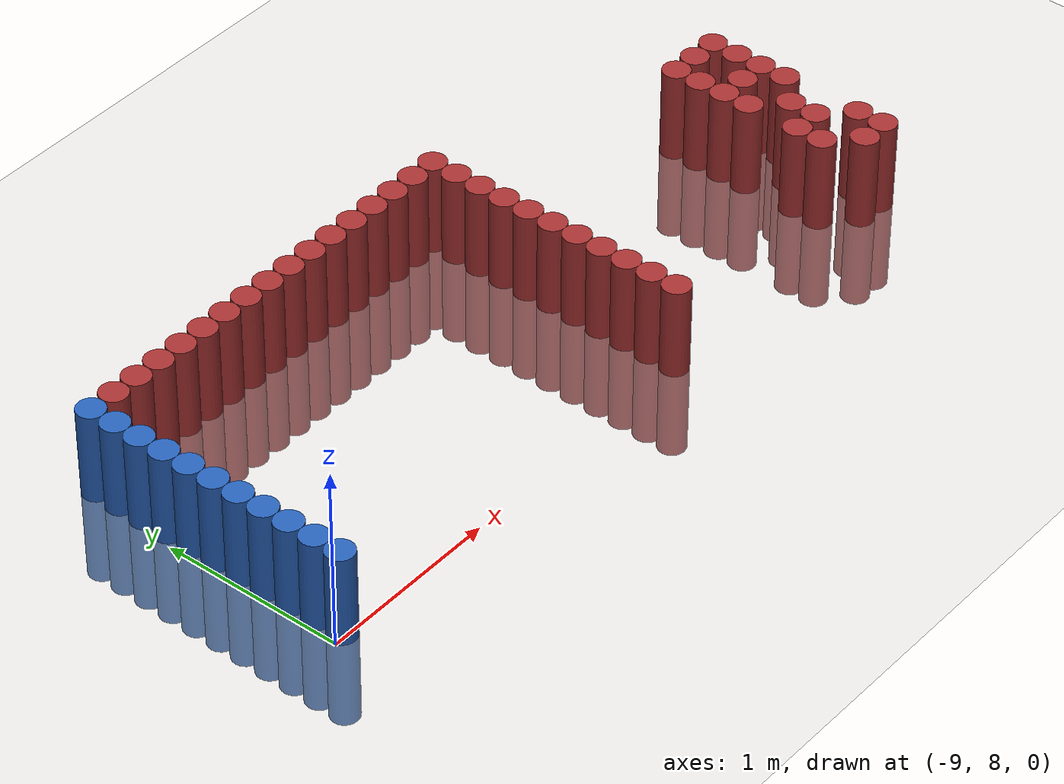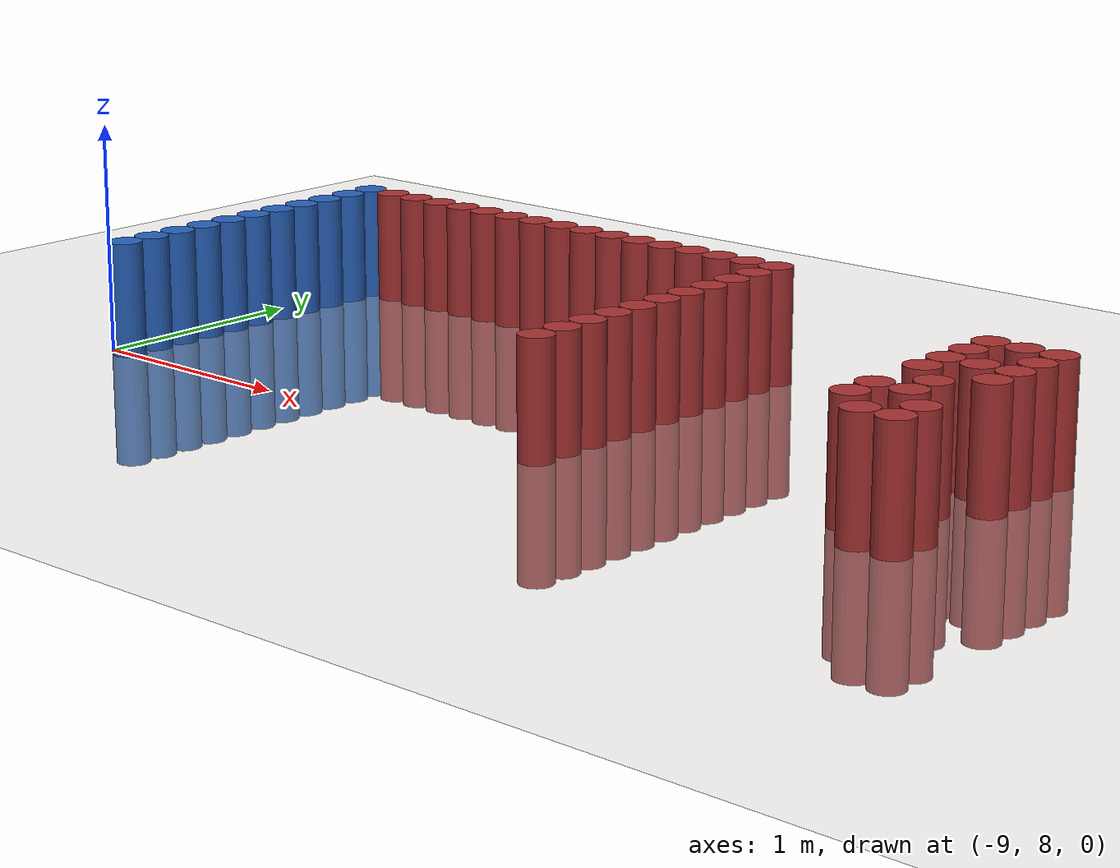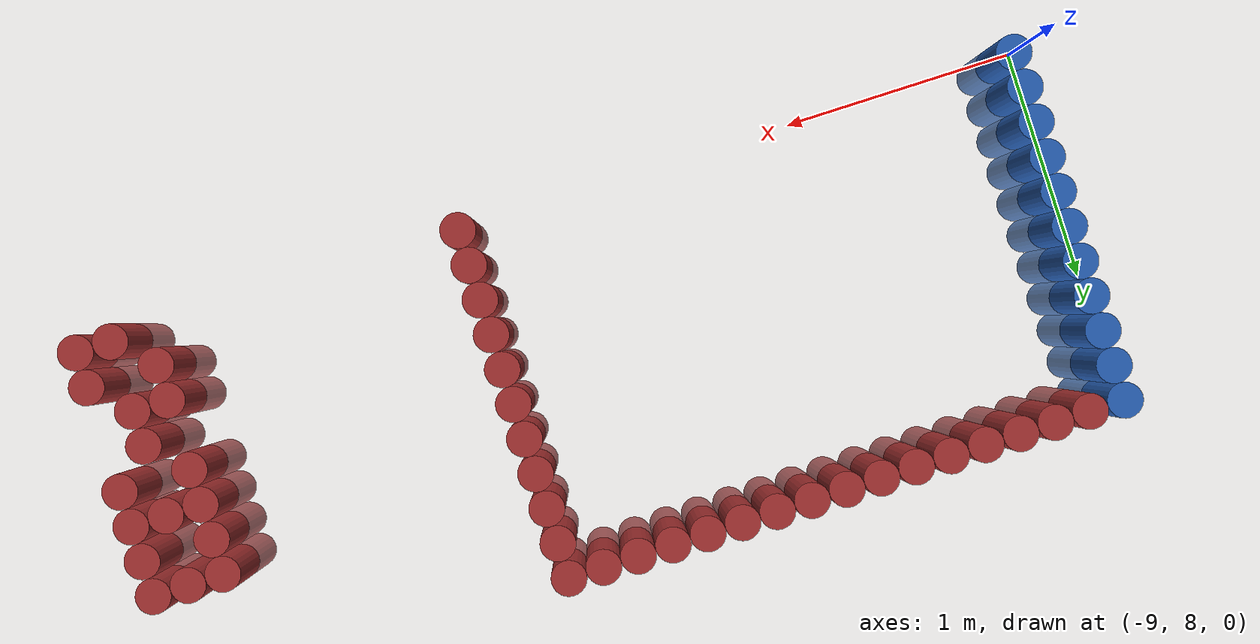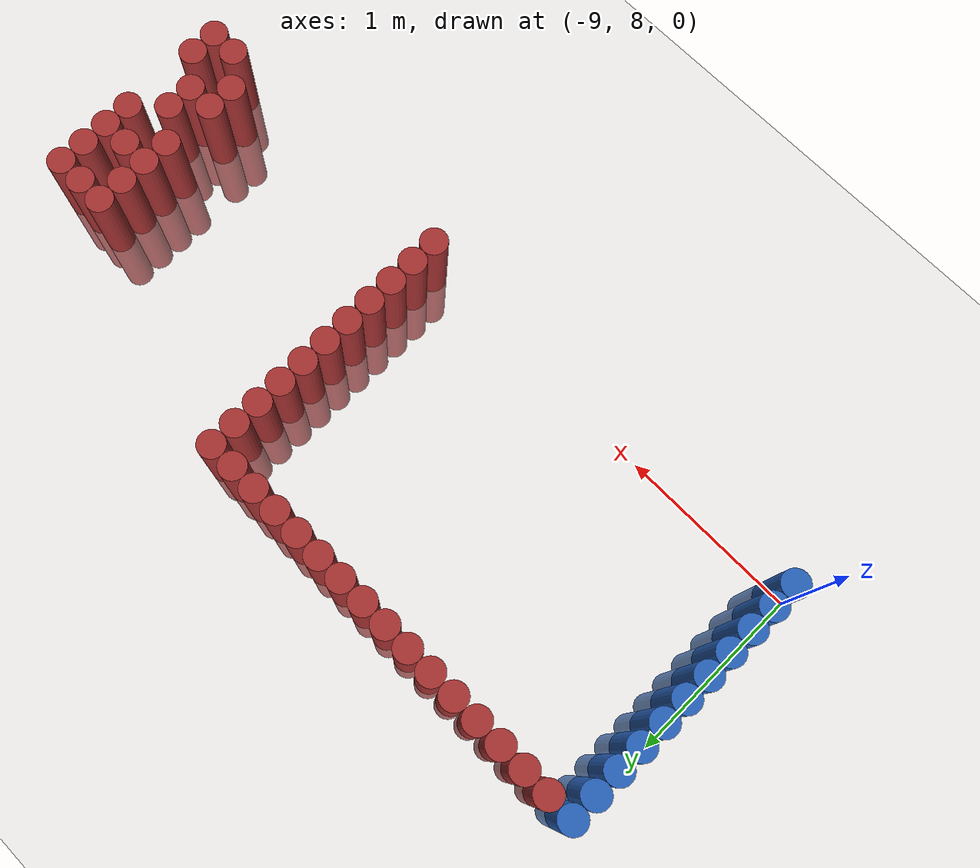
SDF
<sdf version="1.6">
 <world name="default">
  <model name="ground_plane">
   <static>1</static>
   <link name="link">
    <collision name="collision">
     <geometry><plane><normal>0 0 1</normal><size>100 100</size></plane></geometry>
     <surface><friction><ode><mu>100</mu><mu2>50</mu2></ode></friction></surface>
    </collision>
    <visual name="visual">
     <cast_shadows>0</cast_shadows>
     <geometry><plane><normal>0 0 1</normal><size>100 100</size></plane></geometry>
     <material>
      <script><uri>file://media/materials/scripts/gazebo.material</uri><name>Gazebo/Grey</name></script>
     </material>
    </visual>
   </link>
  </model>
  <model name="unit_cylinder_144">
   <static>1</static>
   <pose>-8.925000 8.025000 0.000000 0.000000 0.000000 0.000000</pose>
   <link name="link">
    <inertial>
     <mass>1</mass>
     <inertia><ixx>0.145833</ixx><ixy>0</ixy><ixz>0</ixz><iyy>0.145833</iyy><iyz>0</iyz><izz>0.125</izz></inertia>
    </inertial>
    <collision name="collision">
     <geometry><cylinder><radius>0.075000</radius><length>1</length></cylinder></geometry>
    </collision>
    <visual name="visual">
     <geometry><cylinder><radius>0.075000</radius><length>1</length></cylinder></geometry>
     <material>
      <ambient>0.152000 0.379000 0.720000 1</ambient>
      <diffuse>0.152000 0.379000 0.720000 1</diffuse>
     </material>
     <material>
      <script><name>Gazebo/Grey</name><uri>file://media/materials/scripts/gazebo.material</uri></script>
     </material>
    </visual>
   </link>
  </model>
  <model name="unit_cylinder_145">
   <static>1</static>
   <pose>-8.925000 8.175000 0.000000 0.000000 0.000000 0.000000</pose>
   <link name="link">
    <inertial>
     <mass>1</mass>
     <inertia><ixx>0.145833</ixx><ixy>0</ixy><ixz>0</ixz><iyy>0.145833</iyy><iyz>0</iyz><izz>0.125</izz></inertia>
    </inertial>
    <collision name="collision">
     <geometry><cylinder><radius>0.075000</radius><length>1</length></cylinder></geometry>
    </collision>
    <visual name="visual">
     <geometry><cylinder><radius>0.075000</radius><length>1</length></cylinder></geometry>
     <material>
      <ambient>0.152000 0.379000 0.720000 1</ambient>
      <diffuse>0.152000 0.379000 0.720000 1</diffuse>
     </material>
     <material>
      <script><name>Gazebo/Grey</name><uri>file://media/materials/scripts/gazebo.material</uri></script>
     </material>
    </visual>
   </link>
  </model>
  <model name="unit_cylinder_146">
   <static>1</static>
   <pose>-8.925000 8.325000 0.000000 0.000000 0.000000 0.000000</pose>
   <link name="link">
    <inertial>
     <mass>1</mass>
     <inertia><ixx>0.145833</ixx><ixy>0</ixy><ixz>0</ixz><iyy>0.145833</iyy><iyz>0</iyz><izz>0.125</izz></inertia>
    </inertial>
    <collision name="collision">
     <geometry><cylinder><radius>0.075000</radius><length>1</length></cylinder></geometry>
    </collision>
    <visual name="visual">
     <geometry><cylinder><radius>0.075000</radius><length>1</length></cylinder></geometry>
     <material>
      <ambient>0.152000 0.379000 0.720000 1</ambient>
      <diffuse>0.152000 0.379000 0.720000 1</diffuse>
     </material>
     <material>
      <script><name>Gazebo/Grey</name><uri>file://media/materials/scripts/gazebo.material</uri></script>
     </material>
    </visual>
   </link>
  </model>
  <model name="unit_cylinder_147">
   <static>1</static>
   <pose>-8.925000 8.475000 0.000000 0.000000 0.000000 0.000000</pose>
   <link name="link">
    <inertial>
     <mass>1</mass>
     <inertia><ixx>0.145833</ixx><ixy>0</ixy><ixz>0</ixz><iyy>0.145833</iyy><iyz>0</iyz><izz>0.125</izz></inertia>
    </inertial>
    <collision name="collision">
     <geometry><cylinder><radius>0.075000</radius><length>1</length></cylinder></geometry>
    </collision>
    <visual name="visual">
     <geometry><cylinder><radius>0.075000</radius><length>1</length></cylinder></geometry>
     <material>
      <ambient>0.152000 0.379000 0.720000 1</ambient>
      <diffuse>0.152000 0.379000 0.720000 1</diffuse>
     </material>
     <material>
      <script><name>Gazebo/Grey</name><uri>file://media/materials/scripts/gazebo.material</uri></script>
     </material>
    </visual>
   </link>
  </model>
  <model name="unit_cylinder_148">
   <static>1</static>
   <pose>-8.925000 8.625000 0.000000 0.000000 0.000000 0.000000</pose>
   <link name="link">
    <inertial>
     <mass>1</mass>
     <inertia><ixx>0.145833</ixx><ixy>0</ixy><ixz>0</ixz><iyy>0.145833</iyy><iyz>0</iyz><izz>0.125</izz></inertia>
    </inertial>
    <collision name="collision">
     <geometry><cylinder><radius>0.075000</radius><length>1</length></cylinder></geometry>
    </collision>
    <visual name="visual">
     <geometry><cylinder><radius>0.075000</radius><length>1</length></cylinder></geometry>
     <material>
      <ambient>0.152000 0.379000 0.720000 1</ambient>
      <diffuse>0.152000 0.379000 0.720000 1</diffuse>
     </material>
     <material>
      <script><name>Gazebo/Grey</name><uri>file://media/materials/scripts/gazebo.material</uri></script>
     </material>
    </visual>
   </link>
  </model>
  <model name="unit_cylinder_149">
   <static>1</static>
   <pose>-8.925000 8.775000 0.000000 0.000000 0.000000 0.000000</pose>
   <link name="link">
    <inertial>
     <mass>1</mass>
     <inertia><ixx>0.145833</ixx><ixy>0</ixy><ixz>0</ixz><iyy>0.145833</iyy><iyz>0</iyz><izz>0.125</izz></inertia>
    </inertial>
    <collision name="collision">
     <geometry><cylinder><radius>0.075000</radius><length>1</length></cylinder></geometry>
    </collision>
    <visual name="visual">
     <geometry><cylinder><radius>0.075000</radius><length>1</length></cylinder></geometry>
     <material>
      <ambient>0.152000 0.379000 0.720000 1</ambient>
      <diffuse>0.152000 0.379000 0.720000 1</diffuse>
     </material>
     <material>
      <script><name>Gazebo/Grey</name><uri>file://media/materials/scripts/gazebo.material</uri></script>
     </material>
    </visual>
   </link>
  </model>
  <model name="unit_cylinder_150">
   <static>1</static>
   <pose>-8.925000 8.925000 0.000000 0.000000 0.000000 0.000000</pose>
   <link name="link">
    <inertial>
     <mass>1</mass>
     <inertia><ixx>0.145833</ixx><ixy>0</ixy><ixz>0</ixz><iyy>0.145833</iyy><iyz>0</iyz><izz>0.125</izz></inertia>
    </inertial>
    <collision name="collision">
     <geometry><cylinder><radius>0.075000</radius><length>1</length></cylinder></geometry>
    </collision>
    <visual name="visual">
     <geometry><cylinder><radius>0.075000</radius><length>1</length></cylinder></geometry>
     <material>
      <ambient>0.152000 0.379000 0.720000 1</ambient>
      <diffuse>0.152000 0.379000 0.720000 1</diffuse>
     </material>
     <material>
      <script><name>Gazebo/Grey</name><uri>file://media/materials/scripts/gazebo.material</uri></script>
     </material>
    </visual>
   </link>
  </model>
  <model name="unit_cylinder_151">
   <static>1</static>
   <pose>-8.925000 9.075000 0.000000 0.000000 0.000000 0.000000</pose>
   <link name="link">
    <inertial>
     <mass>1</mass>
     <inertia><ixx>0.145833</ixx><ixy>0</ixy><ixz>0</ixz><iyy>0.145833</iyy><iyz>0</iyz><izz>0.125</izz></inertia>
    </inertial>
    <collision name="collision">
     <geometry><cylinder><radius>0.075000</radius><length>1</length></cylinder></geometry>
    </collision>
    <visual name="visual">
     <geometry><cylinder><radius>0.075000</radius><length>1</length></cylinder></geometry>
     <material>
      <ambient>0.152000 0.379000 0.720000 1</ambient>
      <diffuse>0.152000 0.379000 0.720000 1</diffuse>
     </material>
     <material>
      <script><name>Gazebo/Grey</name><uri>file://media/materials/scripts/gazebo.material</uri></script>
     </material>
    </visual>
   </link>
  </model>
  <model name="unit_cylinder_152">
   <static>1</static>
   <pose>-8.925000 9.225000 0.000000 0.000000 0.000000 0.000000</pose>
   <link name="link">
    <inertial>
     <mass>1</mass>
     <inertia><ixx>0.145833</ixx><ixy>0</ixy><ixz>0</ixz><iyy>0.145833</iyy><iyz>0</iyz><izz>0.125</izz></inertia>
    </inertial>
    <collision name="collision">
     <geometry><cylinder><radius>0.075000</radius><length>1</length></cylinder></geometry>
    </collision>
    <visual name="visual">
     <geometry><cylinder><radius>0.075000</radius><length>1</length></cylinder></geometry>
     <material>
      <ambient>0.152000 0.379000 0.720000 1</ambient>
      <diffuse>0.152000 0.379000 0.720000 1</diffuse>
     </material>
     <material>
      <script><name>Gazebo/Grey</name><uri>file://media/materials/scripts/gazebo.material</uri></script>
     </material>
    </visual>
   </link>
  </model>
  <model name="unit_cylinder_153">
   <static>1</static>
   <pose>-8.925000 9.375000 0.000000 0.000000 0.000000 0.000000</pose>
   <link name="link">
    <inertial>
     <mass>1</mass>
     <inertia><ixx>0.145833</ixx><ixy>0</ixy><ixz>0</ixz><iyy>0.145833</iyy><iyz>0</iyz><izz>0.125</izz></inertia>
    </inertial>
    <collision name="collision">
     <geometry><cylinder><radius>0.075000</radius><length>1</length></cylinder></geometry>
    </collision>
    <visual name="visual">
     <geometry><cylinder><radius>0.075000</radius><length>1</length></cylinder></geometry>
     <material>
      <ambient>0.152000 0.379000 0.720000 1</ambient>
      <diffuse>0.152000 0.379000 0.720000 1</diffuse>
     </material>
     <material>
      <script><name>Gazebo/Grey</name><uri>file://media/materials/scripts/gazebo.material</uri></script>
     </material>
    </visual>
   </link>
  </model>
  <model name="unit_cylinder_154">
   <static>1</static>
   <pose>-8.925000 9.525000 0.000000 0.000000 0.000000 0.000000</pose>
   <link name="link">
    <inertial>
     <mass>1</mass>
     <inertia><ixx>0.145833</ixx><ixy>0</ixy><ixz>0</ixz><iyy>0.145833</iyy><iyz>0</iyz><izz>0.125</izz></inertia>
    </inertial>
    <collision name="collision">
     <geometry><cylinder><radius>0.075000</radius><length>1</length></cylinder></geometry>
    </collision>
    <visual name="visual">
     <geometry><cylinder><radius>0.075000</radius><length>1</length></cylinder></geometry>
     <material>
      <ambient>0.152000 0.379000 0.720000 1</ambient>
      <diffuse>0.152000 0.379000 0.720000 1</diffuse>
     </material>
     <material>
      <script><name>Gazebo/Grey</name><uri>file://media/materials/scripts/gazebo.material</uri></script>
     </material>
    </visual>
   </link>
  </model>
  <model name="unit_cylinder_156">
   <static>1</static>
   <pose>-8.775000 9.525000 0.000000 0.000000 0.000000 0.000000</pose>
   <link name="link">
    <inertial>
     <mass>1</mass>
     <inertia><ixx>0.145833</ixx><ixy>0</ixy><ixz>0</ixz><iyy>0.145833</iyy><iyz>0</iyz><izz>0.125</izz></inertia>
    </inertial>
    <collision name="collision">
     <geometry><cylinder><radius>0.075000</radius><length>1</length></cylinder></geometry>
    </collision>
    <visual name="visual">
     <geometry><cylinder><radius>0.075000</radius><length>1</length></cylinder></geometry>
     <material>
      <ambient>0.648000 0.192000 0.192000 1</ambient>
      <diffuse>0.648000 0.192000 0.192000 1</diffuse>
     </material>
     <material>
      <script><name>Gazebo/Grey</name><uri>file://media/materials/scripts/gazebo.material</uri></script>
     </material>
    </visual>
   </link>
  </model>
  <model name="unit_cylinder_158">
   <static>1</static>
   <pose>-8.625000 9.525000 0.000000 0.000000 0.000000 0.000000</pose>
   <link name="link">
    <inertial>
     <mass>1</mass>
     <inertia><ixx>0.145833</ixx><ixy>0</ixy><ixz>0</ixz><iyy>0.145833</iyy><iyz>0</iyz><izz>0.125</izz></inertia>
    </inertial>
    <collision name="collision">
     <geometry><cylinder><radius>0.075000</radius><length>1</length></cylinder></geometry>
    </collision>
    <visual name="visual">
     <geometry><cylinder><radius>0.075000</radius><length>1</length></cylinder></geometry>
     <material>
      <ambient>0.648000 0.192000 0.192000 1</ambient>
      <diffuse>0.648000 0.192000 0.192000 1</diffuse>
     </material>
     <material>
      <script><name>Gazebo/Grey</name><uri>file://media/materials/scripts/gazebo.material</uri></script>
     </material>
    </visual>
   </link>
  </model>
  <model name="unit_cylinder_160">
   <static>1</static>
   <pose>-8.475000 9.525000 0.000000 0.000000 0.000000 0.000000</pose>
   <link name="link">
    <inertial>
     <mass>1</mass>
     <inertia><ixx>0.145833</ixx><ixy>0</ixy><ixz>0</ixz><iyy>0.145833</iyy><iyz>0</iyz><izz>0.125</izz></inertia>
    </inertial>
    <collision name="collision">
     <geometry><cylinder><radius>0.075000</radius><length>1</length></cylinder></geometry>
    </collision>
    <visual name="visual">
     <geometry><cylinder><radius>0.075000</radius><length>1</length></cylinder></geometry>
     <material>
      <ambient>0.648000 0.192000 0.192000 1</ambient>
      <diffuse>0.648000 0.192000 0.192000 1</diffuse>
     </material>
     <material>
      <script><name>Gazebo/Grey</name><uri>file://media/materials/scripts/gazebo.material</uri></script>
     </material>
    </visual>
   </link>
  </model>
  <model name="unit_cylinder_162">
   <static>1</static>
   <pose>-8.325000 9.525000 0.000000 0.000000 0.000000 0.000000</pose>
   <link name="link">
    <inertial>
     <mass>1</mass>
     <inertia><ixx>0.145833</ixx><ixy>0</ixy><ixz>0</ixz><iyy>0.145833</iyy><iyz>0</iyz><izz>0.125</izz></inertia>
    </inertial>
    <collision name="collision">
     <geometry><cylinder><radius>0.075000</radius><length>1</length></cylinder></geometry>
    </collision>
    <visual name="visual">
     <geometry><cylinder><radius>0.075000</radius><length>1</length></cylinder></geometry>
     <material>
      <ambient>0.648000 0.192000 0.192000 1</ambient>
      <diffuse>0.648000 0.192000 0.192000 1</diffuse>
     </material>
     <material>
      <script><name>Gazebo/Grey</name><uri>file://media/materials/scripts/gazebo.material</uri></script>
     </material>
    </visual>
   </link>
  </model>
  <model name="unit_cylinder_164">
   <static>1</static>
   <pose>-8.175000 9.525000 0.000000 0.000000 0.000000 0.000000</pose>
   <link name="link">
    <inertial>
     <mass>1</mass>
     <inertia><ixx>0.145833</ixx><ixy>0</ixy><ixz>0</ixz><iyy>0.145833</iyy><iyz>0</iyz><izz>0.125</izz></inertia>
    </inertial>
    <collision name="collision">
     <geometry><cylinder><radius>0.075000</radius><length>1</length></cylinder></geometry>
    </collision>
    <visual name="visual">
     <geometry><cylinder><radius>0.075000</radius><length>1</length></cylinder></geometry>
     <material>
      <ambient>0.648000 0.192000 0.192000 1</ambient>
      <diffuse>0.648000 0.192000 0.192000 1</diffuse>
     </material>
     <material>
      <script><name>Gazebo/Grey</name><uri>file://media/materials/scripts/gazebo.material</uri></script>
     </material>
    </visual>
   </link>
  </model>
  <model name="unit_cylinder_166">
   <static>1</static>
   <pose>-8.025000 9.525000 0.000000 0.000000 0.000000 0.000000</pose>
   <link name="link">
    <inertial>
     <mass>1</mass>
     <inertia><ixx>0.145833</ixx><ixy>0</ixy><ixz>0</ixz><iyy>0.145833</iyy><iyz>0</iyz><izz>0.125</izz></inertia>
    </inertial>
    <collision name="collision">
     <geometry><cylinder><radius>0.075000</radius><length>1</length></cylinder></geometry>
    </collision>
    <visual name="visual">
     <geometry><cylinder><radius>0.075000</radius><length>1</length></cylinder></geometry>
     <material>
      <ambient>0.648000 0.192000 0.192000 1</ambient>
      <diffuse>0.648000 0.192000 0.192000 1</diffuse>
     </material>
     <material>
      <script><name>Gazebo/Grey</name><uri>file://media/materials/scripts/gazebo.material</uri></script>
     </material>
    </visual>
   </link>
  </model>
  <model name="unit_cylinder_168">
   <static>1</static>
   <pose>-7.875000 9.525000 0.000000 0.000000 0.000000 0.000000</pose>
   <link name="link">
    <inertial>
     <mass>1</mass>
     <inertia><ixx>0.145833</ixx><ixy>0</ixy><ixz>0</ixz><iyy>0.145833</iyy><iyz>0</iyz><izz>0.125</izz></inertia>
    </inertial>
    <collision name="collision">
     <geometry><cylinder><radius>0.075000</radius><length>1</length></cylinder></geometry>
    </collision>
    <visual name="visual">
     <geometry><cylinder><radius>0.075000</radius><length>1</length></cylinder></geometry>
     <material>
      <ambient>0.648000 0.192000 0.192000 1</ambient>
      <diffuse>0.648000 0.192000 0.192000 1</diffuse>
     </material>
     <material>
      <script><name>Gazebo/Grey</name><uri>file://media/materials/scripts/gazebo.material</uri></script>
     </material>
    </visual>
   </link>
  </model>
  <model name="unit_cylinder_170">
   <static>1</static>
   <pose>-7.725000 9.525000 0.000000 0.000000 0.000000 0.000000</pose>
   <link name="link">
    <inertial>
     <mass>1</mass>
     <inertia><ixx>0.145833</ixx><ixy>0</ixy><ixz>0</ixz><iyy>0.145833</iyy><iyz>0</iyz><izz>0.125</izz></inertia>
    </inertial>
    <collision name="collision">
     <geometry><cylinder><radius>0.075000</radius><length>1</length></cylinder></geometry>
    </collision>
    <visual name="visual">
     <geometry><cylinder><radius>0.075000</radius><length>1</length></cylinder></geometry>
     <material>
      <ambient>0.648000 0.192000 0.192000 1</ambient>
      <diffuse>0.648000 0.192000 0.192000 1</diffuse>
     </material>
     <material>
      <script><name>Gazebo/Grey</name><uri>file://media/materials/scripts/gazebo.material</uri></script>
     </material>
    </visual>
   </link>
  </model>
  <model name="unit_cylinder_172">
   <static>1</static>
   <pose>-7.575000 9.525000 0.000000 0.000000 0.000000 0.000000</pose>
   <link name="link">
    <inertial>
     <mass>1</mass>
     <inertia><ixx>0.145833</ixx><ixy>0</ixy><ixz>0</ixz><iyy>0.145833</iyy><iyz>0</iyz><izz>0.125</izz></inertia>
    </inertial>
    <collision name="collision">
     <geometry><cylinder><radius>0.075000</radius><length>1</length></cylinder></geometry>
    </collision>
    <visual name="visual">
     <geometry><cylinder><radius>0.075000</radius><length>1</length></cylinder></geometry>
     <material>
      <ambient>0.648000 0.192000 0.192000 1</ambient>
      <diffuse>0.648000 0.192000 0.192000 1</diffuse>
     </material>
     <material>
      <script><name>Gazebo/Grey</name><uri>file://media/materials/scripts/gazebo.material</uri></script>
     </material>
    </visual>
   </link>
  </model>
  <model name="unit_cylinder_174">
   <static>1</static>
   <pose>-7.425000 9.525000 0.000000 0.000000 0.000000 0.000000</pose>
   <link name="link">
    <inertial>
     <mass>1</mass>
     <inertia><ixx>0.145833</ixx><ixy>0</ixy><ixz>0</ixz><iyy>0.145833</iyy><iyz>0</iyz><izz>0.125</izz></inertia>
    </inertial>
    <collision name="collision">
     <geometry><cylinder><radius>0.075000</radius><length>1</length></cylinder></geometry>
    </collision>
    <visual name="visual">
     <geometry><cylinder><radius>0.075000</radius><length>1</length></cylinder></geometry>
     <material>
      <ambient>0.648000 0.192000 0.192000 1</ambient>
      <diffuse>0.648000 0.192000 0.192000 1</diffuse>
     </material>
     <material>
      <script><name>Gazebo/Grey</name><uri>file://media/materials/scripts/gazebo.material</uri></script>
     </material>
    </visual>
   </link>
  </model>
  <model name="unit_cylinder_176">
   <static>1</static>
   <pose>-7.275000 9.525000 0.000000 0.000000 0.000000 0.000000</pose>
   <link name="link">
    <inertial>
     <mass>1</mass>
     <inertia><ixx>0.145833</ixx><ixy>0</ixy><ixz>0</ixz><iyy>0.145833</iyy><iyz>0</iyz><izz>0.125</izz></inertia>
    </inertial>
    <collision name="collision">
     <geometry><cylinder><radius>0.075000</radius><length>1</length></cylinder></geometry>
    </collision>
    <visual name="visual">
     <geometry><cylinder><radius>0.075000</radius><length>1</length></cylinder></geometry>
     <material>
      <ambient>0.648000 0.192000 0.192000 1</ambient>
      <diffuse>0.648000 0.192000 0.192000 1</diffuse>
     </material>
     <material>
      <script><name>Gazebo/Grey</name><uri>file://media/materials/scripts/gazebo.material</uri></script>
     </material>
    </visual>
   </link>
  </model>
  <model name="unit_cylinder_178">
   <static>1</static>
   <pose>-7.125000 9.525000 0.000000 0.000000 0.000000 0.000000</pose>
   <link name="link">
    <inertial>
     <mass>1</mass>
     <inertia><ixx>0.145833</ixx><ixy>0</ixy><ixz>0</ixz><iyy>0.145833</iyy><iyz>0</iyz><izz>0.125</izz></inertia>
    </inertial>
    <collision name="collision">
     <geometry><cylinder><radius>0.075000</radius><length>1</length></cylinder></geometry>
    </collision>
    <visual name="visual">
     <geometry><cylinder><radius>0.075000</radius><length>1</length></cylinder></geometry>
     <material>
      <ambient>0.648000 0.192000 0.192000 1</ambient>
      <diffuse>0.648000 0.192000 0.192000 1</diffuse>
     </material>
     <material>
      <script><name>Gazebo/Grey</name><uri>file://media/materials/scripts/gazebo.material</uri></script>
     </material>
    </visual>
   </link>
  </model>
  <model name="unit_cylinder_180">
   <static>1</static>
   <pose>-6.975000 9.525000 0.000000 0.000000 0.000000 0.000000</pose>
   <link name="link">
    <inertial>
     <mass>1</mass>
     <inertia><ixx>0.145833</ixx><ixy>0</ixy><ixz>0</ixz><iyy>0.145833</iyy><iyz>0</iyz><izz>0.125</izz></inertia>
    </inertial>
    <collision name="collision">
     <geometry><cylinder><radius>0.075000</radius><length>1</length></cylinder></geometry>
    </collision>
    <visual name="visual">
     <geometry><cylinder><radius>0.075000</radius><length>1</length></cylinder></geometry>
     <material>
      <ambient>0.648000 0.192000 0.192000 1</ambient>
      <diffuse>0.648000 0.192000 0.192000 1</diffuse>
     </material>
     <material>
      <script><name>Gazebo/Grey</name><uri>file://media/materials/scripts/gazebo.material</uri></script>
     </material>
    </visual>
   </link>
  </model>
  <model name="unit_cylinder_182">
   <static>1</static>
   <pose>-6.825000 9.525000 0.000000 0.000000 0.000000 0.000000</pose>
   <link name="link">
    <inertial>
     <mass>1</mass>
     <inertia><ixx>0.145833</ixx><ixy>0</ixy><ixz>0</ixz><iyy>0.145833</iyy><iyz>0</iyz><izz>0.125</izz></inertia>
    </inertial>
    <collision name="collision">
     <geometry><cylinder><radius>0.075000</radius><length>1</length></cylinder></geometry>
    </collision>
    <visual name="visual">
     <geometry><cylinder><radius>0.075000</radius><length>1</length></cylinder></geometry>
     <material>
      <ambient>0.648000 0.192000 0.192000 1</ambient>
      <diffuse>0.648000 0.192000 0.192000 1</diffuse>
     </material>
     <material>
      <script><name>Gazebo/Grey</name><uri>file://media/materials/scripts/gazebo.material</uri></script>
     </material>
    </visual>
   </link>
  </model>
  <model name="unit_cylinder_184">
   <static>1</static>
   <pose>-6.675000 9.525000 0.000000 0.000000 0.000000 0.000000</pose>
   <link name="link">
    <inertial>
     <mass>1</mass>
     <inertia><ixx>0.145833</ixx><ixy>0</ixy><ixz>0</ixz><iyy>0.145833</iyy><iyz>0</iyz><izz>0.125</izz></inertia>
    </inertial>
    <collision name="collision">
     <geometry><cylinder><radius>0.075000</radius><length>1</length></cylinder></geometry>
    </collision>
    <visual name="visual">
     <geometry><cylinder><radius>0.075000</radius><length>1</length></cylinder></geometry>
     <material>
      <ambient>0.648000 0.192000 0.192000 1</ambient>
      <diffuse>0.648000 0.192000 0.192000 1</diffuse>
     </material>
     <material>
      <script><name>Gazebo/Grey</name><uri>file://media/materials/scripts/gazebo.material</uri></script>
     </material>
    </visual>
   </link>
  </model>
  <model name="unit_cylinder_204">
   <static>1</static>
   <pose>-6.525000 8.025000 0.000000 0.000000 0.000000 0.000000</pose>
   <link name="link">
    <inertial>
     <mass>1</mass>
     <inertia><ixx>0.145833</ixx><ixy>0</ixy><ixz>0</ixz><iyy>0.145833</iyy><iyz>0</iyz><izz>0.125</izz></inertia>
    </inertial>
    <collision name="collision">
     <geometry><cylinder><radius>0.075000</radius><length>1</length></cylinder></geometry>
    </collision>
    <visual name="visual">
     <geometry><cylinder><radius>0.075000</radius><length>1</length></cylinder></geometry>
     <material>
      <ambient>0.648000 0.192000 0.192000 1</ambient>
      <diffuse>0.648000 0.192000 0.192000 1</diffuse>
     </material>
     <material>
      <script><name>Gazebo/Grey</name><uri>file://media/materials/scripts/gazebo.material</uri></script>
     </material>
    </visual>
   </link>
  </model>
  <model name="unit_cylinder_205">
   <static>1</static>
   <pose>-6.525000 8.175000 0.000000 0.000000 0.000000 0.000000</pose>
   <link name="link">
    <inertial>
     <mass>1</mass>
     <inertia><ixx>0.145833</ixx><ixy>0</ixy><ixz>0</ixz><iyy>0.145833</iyy><iyz>0</iyz><izz>0.125</izz></inertia>
    </inertial>
    <collision name="collision">
     <geometry><cylinder><radius>0.075000</radius><length>1</length></cylinder></geometry>
    </collision>
    <visual name="visual">
     <geometry><cylinder><radius>0.075000</radius><length>1</length></cylinder></geometry>
     <material>
      <ambient>0.648000 0.192000 0.192000 1</ambient>
      <diffuse>0.648000 0.192000 0.192000 1</diffuse>
     </material>
     <material>
      <script><name>Gazebo/Grey</name><uri>file://media/materials/scripts/gazebo.material</uri></script>
     </material>
    </visual>
   </link>
  </model>
  <model name="unit_cylinder_206">
   <static>1</static>
   <pose>-6.525000 8.325000 0.000000 0.000000 0.000000 0.000000</pose>
   <link name="link">
    <inertial>
     <mass>1</mass>
     <inertia><ixx>0.145833</ixx><ixy>0</ixy><ixz>0</ixz><iyy>0.145833</iyy><iyz>0</iyz><izz>0.125</izz></inertia>
    </inertial>
    <collision name="collision">
     <geometry><cylinder><radius>0.075000</radius><length>1</length></cylinder></geometry>
    </collision>
    <visual name="visual">
     <geometry><cylinder><radius>0.075000</radius><length>1</length></cylinder></geometry>
     <material>
      <ambient>0.648000 0.192000 0.192000 1</ambient>
      <diffuse>0.648000 0.192000 0.192000 1</diffuse>
     </material>
     <material>
      <script><name>Gazebo/Grey</name><uri>file://media/materials/scripts/gazebo.material</uri></script>
     </material>
    </visual>
   </link>
  </model>
  <model name="unit_cylinder_207">
   <static>1</static>
   <pose>-6.525000 8.475000 0.000000 0.000000 0.000000 0.000000</pose>
   <link name="link">
    <inertial>
     <mass>1</mass>
     <inertia><ixx>0.145833</ixx><ixy>0</ixy><ixz>0</ixz><iyy>0.145833</iyy><iyz>0</iyz><izz>0.125</izz></inertia>
    </inertial>
    <collision name="collision">
     <geometry><cylinder><radius>0.075000</radius><length>1</length></cylinder></geometry>
    </collision>
    <visual name="visual">
     <geometry><cylinder><radius>0.075000</radius><length>1</length></cylinder></geometry>
     <material>
      <ambient>0.648000 0.192000 0.192000 1</ambient>
      <diffuse>0.648000 0.192000 0.192000 1</diffuse>
     </material>
     <material>
      <script><name>Gazebo/Grey</name><uri>file://media/materials/scripts/gazebo.material</uri></script>
     </material>
    </visual>
   </link>
  </model>
  <model name="unit_cylinder_208">
   <static>1</static>
   <pose>-6.525000 8.625000 0.000000 0.000000 0.000000 0.000000</pose>
   <link name="link">
    <inertial>
     <mass>1</mass>
     <inertia><ixx>0.145833</ixx><ixy>0</ixy><ixz>0</ixz><iyy>0.145833</iyy><iyz>0</iyz><izz>0.125</izz></inertia>
    </inertial>
    <collision name="collision">
     <geometry><cylinder><radius>0.075000</radius><length>1</length></cylinder></geometry>
    </collision>
    <visual name="visual">
     <geometry><cylinder><radius>0.075000</radius><length>1</length></cylinder></geometry>
     <material>
      <ambient>0.648000 0.192000 0.192000 1</ambient>
      <diffuse>0.648000 0.192000 0.192000 1</diffuse>
     </material>
     <material>
      <script><name>Gazebo/Grey</name><uri>file://media/materials/scripts/gazebo.material</uri></script>
     </material>
    </visual>
   </link>
  </model>
  <model name="unit_cylinder_209">
   <static>1</static>
   <pose>-6.525000 8.775000 0.000000 0.000000 0.000000 0.000000</pose>
   <link name="link">
    <inertial>
     <mass>1</mass>
     <inertia><ixx>0.145833</ixx><ixy>0</ixy><ixz>0</ixz><iyy>0.145833</iyy><iyz>0</iyz><izz>0.125</izz></inertia>
    </inertial>
    <collision name="collision">
     <geometry><cylinder><radius>0.075000</radius><length>1</length></cylinder></geometry>
    </collision>
    <visual name="visual">
     <geometry><cylinder><radius>0.075000</radius><length>1</length></cylinder></geometry>
     <material>
      <ambient>0.648000 0.192000 0.192000 1</ambient>
      <diffuse>0.648000 0.192000 0.192000 1</diffuse>
     </material>
     <material>
      <script><name>Gazebo/Grey</name><uri>file://media/materials/scripts/gazebo.material</uri></script>
     </material>
    </visual>
   </link>
  </model>
  <model name="unit_cylinder_210">
   <static>1</static>
   <pose>-6.525000 8.925000 0.000000 0.000000 0.000000 0.000000</pose>
   <link name="link">
    <inertial>
     <mass>1</mass>
     <inertia><ixx>0.145833</ixx><ixy>0</ixy><ixz>0</ixz><iyy>0.145833</iyy><iyz>0</iyz><izz>0.125</izz></inertia>
    </inertial>
    <collision name="collision">
     <geometry><cylinder><radius>0.075000</radius><length>1</length></cylinder></geometry>
    </collision>
    <visual name="visual">
     <geometry><cylinder><radius>0.075000</radius><length>1</length></cylinder></geometry>
     <material>
      <ambient>0.648000 0.192000 0.192000 1</ambient>
      <diffuse>0.648000 0.192000 0.192000 1</diffuse>
     </material>
     <material>
      <script><name>Gazebo/Grey</name><uri>file://media/materials/scripts/gazebo.material</uri></script>
     </material>
    </visual>
   </link>
  </model>
  <model name="unit_cylinder_211">
   <static>1</static>
   <pose>-6.525000 9.075000 0.000000 0.000000 0.000000 0.000000</pose>
   <link name="link">
    <inertial>
     <mass>1</mass>
     <inertia><ixx>0.145833</ixx><ixy>0</ixy><ixz>0</ixz><iyy>0.145833</iyy><iyz>0</iyz><izz>0.125</izz></inertia>
    </inertial>
    <collision name="collision">
     <geometry><cylinder><radius>0.075000</radius><length>1</length></cylinder></geometry>
    </collision>
    <visual name="visual">
     <geometry><cylinder><radius>0.075000</radius><length>1</length></cylinder></geometry>
     <material>
      <ambient>0.648000 0.192000 0.192000 1</ambient>
      <diffuse>0.648000 0.192000 0.192000 1</diffuse>
     </material>
     <material>
      <script><name>Gazebo/Grey</name><uri>file://media/materials/scripts/gazebo.material</uri></script>
     </material>
    </visual>
   </link>
  </model>
  <model name="unit_cylinder_212">
   <static>1</static>
   <pose>-6.525000 9.225000 0.000000 0.000000 0.000000 0.000000</pose>
   <link name="link">
    <inertial>
     <mass>1</mass>
     <inertia><ixx>0.145833</ixx><ixy>0</ixy><ixz>0</ixz><iyy>0.145833</iyy><iyz>0</iyz><izz>0.125</izz></inertia>
    </inertial>
    <collision name="collision">
     <geometry><cylinder><radius>0.075000</radius><length>1</length></cylinder></geometry>
    </collision>
    <visual name="visual">
     <geometry><cylinder><radius>0.075000</radius><length>1</length></cylinder></geometry>
     <material>
      <ambient>0.648000 0.192000 0.192000 1</ambient>
      <diffuse>0.648000 0.192000 0.192000 1</diffuse>
     </material>
     <material>
      <script><name>Gazebo/Grey</name><uri>file://media/materials/scripts/gazebo.material</uri></script>
     </material>
    </visual>
   </link>
  </model>
  <model name="unit_cylinder_213">
   <static>1</static>
   <pose>-6.525000 9.375000 0.000000 0.000000 0.000000 0.000000</pose>
   <link name="link">
    <inertial>
     <mass>1</mass>
     <inertia><ixx>0.145833</ixx><ixy>0</ixy><ixz>0</ixz><iyy>0.145833</iyy><iyz>0</iyz><izz>0.125</izz></inertia>
    </inertial>
    <collision name="collision">
     <geometry><cylinder><radius>0.075000</radius><length>1</length></cylinder></geometry>
    </collision>
    <visual name="visual">
     <geometry><cylinder><radius>0.075000</radius><length>1</length></cylinder></geometry>
     <material>
      <ambient>0.648000 0.192000 0.192000 1</ambient>
      <diffuse>0.648000 0.192000 0.192000 1</diffuse>
     </material>
     <material>
      <script><name>Gazebo/Grey</name><uri>file://media/materials/scripts/gazebo.material</uri></script>
     </material>
    </visual>
   </link>
  </model>
  <model name="unit_cylinder_214">
   <static>1</static>
   <pose>-6.525000 9.525000 0.000000 0.000000 0.000000 0.000000</pose>
   <link name="link">
    <inertial>
     <mass>1</mass>
     <inertia><ixx>0.145833</ixx><ixy>0</ixy><ixz>0</ixz><iyy>0.145833</iyy><iyz>0</iyz><izz>0.125</izz></inertia>
    </inertial>
    <collision name="collision">
     <geometry><cylinder><radius>0.075000</radius><length>1</length></cylinder></geometry>
    </collision>
    <visual name="visual">
     <geometry><cylinder><radius>0.075000</radius><length>1</length></cylinder></geometry>
     <material>
      <ambient>0.648000 0.192000 0.192000 1</ambient>
      <diffuse>0.648000 0.192000 0.192000 1</diffuse>
     </material>
     <material>
      <script><name>Gazebo/Grey</name><uri>file://media/materials/scripts/gazebo.material</uri></script>
     </material>
    </visual>
   </link>
  </model>
  <model name="unit_cylinder_220">
   <static>1</static>
   <pose>-5.175000 8.175000 0.000000 0.000000 0.000000 0.000000</pose>
   <link name="link">
    <inertial>
     <mass>1</mass>
     <inertia><ixx>0.145833</ixx><ixy>0</ixy><ixz>0</ixz><iyy>0.145833</iyy><iyz>0</iyz><izz>0.125</izz></inertia>
    </inertial>
    <collision name="collision">
     <geometry><cylinder><radius>0.075000</radius><length>1</length></cylinder></geometry>
    </collision>
    <visual name="visual">
     <geometry><cylinder><radius>0.075000</radius><length>1</length></cylinder></geometry>
     <material>
      <ambient>0.648000 0.192000 0.192000 1</ambient>
      <diffuse>0.648000 0.192000 0.192000 1</diffuse>
     </material>
     <material>
      <script><name>Gazebo/Grey</name><uri>file://media/materials/scripts/gazebo.material</uri></script>
     </material>
    </visual>
   </link>
  </model>
  <model name="unit_cylinder_221">
   <static>1</static>
   <pose>-5.175000 8.325000 0.000000 0.000000 0.000000 0.000000</pose>
   <link name="link">
    <inertial>
     <mass>1</mass>
     <inertia><ixx>0.145833</ixx><ixy>0</ixy><ixz>0</ixz><iyy>0.145833</iyy><iyz>0</iyz><izz>0.125</izz></inertia>
    </inertial>
    <collision name="collision">
     <geometry><cylinder><radius>0.075000</radius><length>1</length></cylinder></geometry>
    </collision>
    <visual name="visual">
     <geometry><cylinder><radius>0.075000</radius><length>1</length></cylinder></geometry>
     <material>
      <ambient>0.648000 0.192000 0.192000 1</ambient>
      <diffuse>0.648000 0.192000 0.192000 1</diffuse>
     </material>
     <material>
      <script><name>Gazebo/Grey</name><uri>file://media/materials/scripts/gazebo.material</uri></script>
     </material>
    </visual>
   </link>
  </model>
  <model name="unit_cylinder_222">
   <static>1</static>
   <pose>-5.175000 8.625000 0.000000 0.000000 0.000000 0.000000</pose>
   <link name="link">
    <inertial>
     <mass>1</mass>
     <inertia><ixx>0.145833</ixx><ixy>0</ixy><ixz>0</ixz><iyy>0.145833</iyy><iyz>0</iyz><izz>0.125</izz></inertia>
    </inertial>
    <collision name="collision">
     <geometry><cylinder><radius>0.075000</radius><length>1</length></cylinder></geometry>
    </collision>
    <visual name="visual">
     <geometry><cylinder><radius>0.075000</radius><length>1</length></cylinder></geometry>
     <material>
      <ambient>0.648000 0.192000 0.192000 1</ambient>
      <diffuse>0.648000 0.192000 0.192000 1</diffuse>
     </material>
     <material>
      <script><name>Gazebo/Grey</name><uri>file://media/materials/scripts/gazebo.material</uri></script>
     </material>
    </visual>
   </link>
  </model>
  <model name="unit_cylinder_223">
   <static>1</static>
   <pose>-5.175000 8.775000 0.000000 0.000000 0.000000 0.000000</pose>
   <link name="link">
    <inertial>
     <mass>1</mass>
     <inertia><ixx>0.145833</ixx><ixy>0</ixy><ixz>0</ixz><iyy>0.145833</iyy><iyz>0</iyz><izz>0.125</izz></inertia>
    </inertial>
    <collision name="collision">
     <geometry><cylinder><radius>0.075000</radius><length>1</length></cylinder></geometry>
    </collision>
    <visual name="visual">
     <geometry><cylinder><radius>0.075000</radius><length>1</length></cylinder></geometry>
     <material>
      <ambient>0.648000 0.192000 0.192000 1</ambient>
      <diffuse>0.648000 0.192000 0.192000 1</diffuse>
     </material>
     <material>
      <script><name>Gazebo/Grey</name><uri>file://media/materials/scripts/gazebo.material</uri></script>
     </material>
    </visual>
   </link>
  </model>
  <model name="unit_cylinder_224">
   <static>1</static>
   <pose>-5.175000 8.925000 0.000000 0.000000 0.000000 0.000000</pose>
   <link name="link">
    <inertial>
     <mass>1</mass>
     <inertia><ixx>0.145833</ixx><ixy>0</ixy><ixz>0</ixz><iyy>0.145833</iyy><iyz>0</iyz><izz>0.125</izz></inertia>
    </inertial>
    <collision name="collision">
     <geometry><cylinder><radius>0.075000</radius><length>1</length></cylinder></geometry>
    </collision>
    <visual name="visual">
     <geometry><cylinder><radius>0.075000</radius><length>1</length></cylinder></geometry>
     <material>
      <ambient>0.648000 0.192000 0.192000 1</ambient>
      <diffuse>0.648000 0.192000 0.192000 1</diffuse>
     </material>
     <material>
      <script><name>Gazebo/Grey</name><uri>file://media/materials/scripts/gazebo.material</uri></script>
     </material>
    </visual>
   </link>
  </model>
  <model name="unit_cylinder_225">
   <static>1</static>
   <pose>-5.175000 9.075000 0.000000 0.000000 0.000000 0.000000</pose>
   <link name="link">
    <inertial>
     <mass>1</mass>
     <inertia><ixx>0.145833</ixx><ixy>0</ixy><ixz>0</ixz><iyy>0.145833</iyy><iyz>0</iyz><izz>0.125</izz></inertia>
    </inertial>
    <collision name="collision">
     <geometry><cylinder><radius>0.075000</radius><length>1</length></cylinder></geometry>
    </collision>
    <visual name="visual">
     <geometry><cylinder><radius>0.075000</radius><length>1</length></cylinder></geometry>
     <material>
      <ambient>0.648000 0.192000 0.192000 1</ambient>
      <diffuse>0.648000 0.192000 0.192000 1</diffuse>
     </material>
     <material>
      <script><name>Gazebo/Grey</name><uri>file://media/materials/scripts/gazebo.material</uri></script>
     </material>
    </visual>
   </link>
  </model>
  <model name="unit_cylinder_233">
   <static>1</static>
   <pose>-5.025000 8.025000 0.000000 0.000000 0.000000 0.000000</pose>
   <link name="link">
    <inertial>
     <mass>1</mass>
     <inertia><ixx>0.145833</ixx><ixy>0</ixy><ixz>0</ixz><iyy>0.145833</iyy><iyz>0</iyz><izz>0.125</izz></inertia>
    </inertial>
    <collision name="collision">
     <geometry><cylinder><radius>0.075000</radius><length>1</length></cylinder></geometry>
    </collision>
    <visual name="visual">
     <geometry><cylinder><radius>0.075000</radius><length>1</length></cylinder></geometry>
     <material>
      <ambient>0.648000 0.192000 0.192000 1</ambient>
      <diffuse>0.648000 0.192000 0.192000 1</diffuse>
     </material>
     <material>
      <script><name>Gazebo/Grey</name><uri>file://media/materials/scripts/gazebo.material</uri></script>
     </material>
    </visual>
   </link>
  </model>
  <model name="unit_cylinder_234">
   <static>1</static>
   <pose>-5.025000 8.325000 0.000000 0.000000 0.000000 0.000000</pose>
   <link name="link">
    <inertial>
     <mass>1</mass>
     <inertia><ixx>0.145833</ixx><ixy>0</ixy><ixz>0</ixz><iyy>0.145833</iyy><iyz>0</iyz><izz>0.125</izz></inertia>
    </inertial>
    <collision name="collision">
     <geometry><cylinder><radius>0.075000</radius><length>1</length></cylinder></geometry>
    </collision>
    <visual name="visual">
     <geometry><cylinder><radius>0.075000</radius><length>1</length></cylinder></geometry>
     <material>
      <ambient>0.648000 0.192000 0.192000 1</ambient>
      <diffuse>0.648000 0.192000 0.192000 1</diffuse>
     </material>
     <material>
      <script><name>Gazebo/Grey</name><uri>file://media/materials/scripts/gazebo.material</uri></script>
     </material>
    </visual>
   </link>
  </model>
  <model name="unit_cylinder_235">
   <static>1</static>
   <pose>-5.025000 8.475000 0.000000 0.000000 0.000000 0.000000</pose>
   <link name="link">
    <inertial>
     <mass>1</mass>
     <inertia><ixx>0.145833</ixx><ixy>0</ixy><ixz>0</ixz><iyy>0.145833</iyy><iyz>0</iyz><izz>0.125</izz></inertia>
    </inertial>
    <collision name="collision">
     <geometry><cylinder><radius>0.075000</radius><length>1</length></cylinder></geometry>
    </collision>
    <visual name="visual">
     <geometry><cylinder><radius>0.075000</radius><length>1</length></cylinder></geometry>
     <material>
      <ambient>0.648000 0.192000 0.192000 1</ambient>
      <diffuse>0.648000 0.192000 0.192000 1</diffuse>
     </material>
     <material>
      <script><name>Gazebo/Grey</name><uri>file://media/materials/scripts/gazebo.material</uri></script>
     </material>
    </visual>
   </link>
  </model>
  <model name="unit_cylinder_236">
   <static>1</static>
   <pose>-5.025000 8.775000 0.000000 0.000000 0.000000 0.000000</pose>
   <link name="link">
    <inertial>
     <mass>1</mass>
     <inertia><ixx>0.145833</ixx><ixy>0</ixy><ixz>0</ixz><iyy>0.145833</iyy><iyz>0</iyz><izz>0.125</izz></inertia>
    </inertial>
    <collision name="collision">
     <geometry><cylinder><radius>0.075000</radius><length>1</length></cylinder></geometry>
    </collision>
    <visual name="visual">
     <geometry><cylinder><radius>0.075000</radius><length>1</length></cylinder></geometry>
     <material>
      <ambient>0.648000 0.192000 0.192000 1</ambient>
      <diffuse>0.648000 0.192000 0.192000 1</diffuse>
     </material>
     <material>
      <script><name>Gazebo/Grey</name><uri>file://media/materials/scripts/gazebo.material</uri></script>
     </material>
    </visual>
   </link>
  </model>
  <model name="unit_cylinder_237">
   <static>1</static>
   <pose>-5.025000 9.075000 0.000000 0.000000 0.000000 0.000000</pose>
   <link name="link">
    <inertial>
     <mass>1</mass>
     <inertia><ixx>0.145833</ixx><ixy>0</ixy><ixz>0</ixz><iyy>0.145833</iyy><iyz>0</iyz><izz>0.125</izz></inertia>
    </inertial>
    <collision name="collision">
     <geometry><cylinder><radius>0.075000</radius><length>1</length></cylinder></geometry>
    </collision>
    <visual name="visual">
     <geometry><cylinder><radius>0.075000</radius><length>1</length></cylinder></geometry>
     <material>
      <ambient>0.648000 0.192000 0.192000 1</ambient>
      <diffuse>0.648000 0.192000 0.192000 1</diffuse>
     </material>
     <material>
      <script><name>Gazebo/Grey</name><uri>file://media/materials/scripts/gazebo.material</uri></script>
     </material>
    </visual>
   </link>
  </model>
  <model name="unit_cylinder_243">
   <static>1</static>
   <pose>-4.875000 8.025000 0.000000 0.000000 0.000000 0.000000</pose>
   <link name="link">
    <inertial>
     <mass>1</mass>
     <inertia><ixx>0.145833</ixx><ixy>0</ixy><ixz>0</ixz><iyy>0.145833</iyy><iyz>0</iyz><izz>0.125</izz></inertia>
    </inertial>
    <collision name="collision">
     <geometry><cylinder><radius>0.075000</radius><length>1</length></cylinder></geometry>
    </collision>
    <visual name="visual">
     <geometry><cylinder><radius>0.075000</radius><length>1</length></cylinder></geometry>
     <material>
      <ambient>0.648000 0.192000 0.192000 1</ambient>
      <diffuse>0.648000 0.192000 0.192000 1</diffuse>
     </material>
     <material>
      <script><name>Gazebo/Grey</name><uri>file://media/materials/scripts/gazebo.material</uri></script>
     </material>
    </visual>
   </link>
  </model>
  <model name="unit_cylinder_244">
   <static>1</static>
   <pose>-4.875000 8.175000 0.000000 0.000000 0.000000 0.000000</pose>
   <link name="link">
    <inertial>
     <mass>1</mass>
     <inertia><ixx>0.145833</ixx><ixy>0</ixy><ixz>0</ixz><iyy>0.145833</iyy><iyz>0</iyz><izz>0.125</izz></inertia>
    </inertial>
    <collision name="collision">
     <geometry><cylinder><radius>0.075000</radius><length>1</length></cylinder></geometry>
    </collision>
    <visual name="visual">
     <geometry><cylinder><radius>0.075000</radius><length>1</length></cylinder></geometry>
     <material>
      <ambient>0.648000 0.192000 0.192000 1</ambient>
      <diffuse>0.648000 0.192000 0.192000 1</diffuse>
     </material>
     <material>
      <script><name>Gazebo/Grey</name><uri>file://media/materials/scripts/gazebo.material</uri></script>
     </material>
    </visual>
   </link>
  </model>
  <model name="unit_cylinder_245">
   <static>1</static>
   <pose>-4.875000 8.625000 0.000000 0.000000 0.000000 0.000000</pose>
   <link name="link">
    <inertial>
     <mass>1</mass>
     <inertia><ixx>0.145833</ixx><ixy>0</ixy><ixz>0</ixz><iyy>0.145833</iyy><iyz>0</iyz><izz>0.125</izz></inertia>
    </inertial>
    <collision name="collision">
     <geometry><cylinder><radius>0.075000</radius><length>1</length></cylinder></geometry>
    </collision>
    <visual name="visual">
     <geometry><cylinder><radius>0.075000</radius><length>1</length></cylinder></geometry>
     <material>
      <ambient>0.648000 0.192000 0.192000 1</ambient>
      <diffuse>0.648000 0.192000 0.192000 1</diffuse>
     </material>
     <material>
      <script><name>Gazebo/Grey</name><uri>file://media/materials/scripts/gazebo.material</uri></script>
     </material>
    </visual>
   </link>
  </model>
  <model name="unit_cylinder_246">
   <static>1</static>
   <pose>-4.875000 8.775000 0.000000 0.000000 0.000000 0.000000</pose>
   <link name="link">
    <inertial>
     <mass>1</mass>
     <inertia><ixx>0.145833</ixx><ixy>0</ixy><ixz>0</ixz><iyy>0.145833</iyy><iyz>0</iyz><izz>0.125</izz></inertia>
    </inertial>
    <collision name="collision">
     <geometry><cylinder><radius>0.075000</radius><length>1</length></cylinder></geometry>
    </collision>
    <visual name="visual">
     <geometry><cylinder><radius>0.075000</radius><length>1</length></cylinder></geometry>
     <material>
      <ambient>0.648000 0.192000 0.192000 1</ambient>
      <diffuse>0.648000 0.192000 0.192000 1</diffuse>
     </material>
     <material>
      <script><name>Gazebo/Grey</name><uri>file://media/materials/scripts/gazebo.material</uri></script>
     </material>
    </visual>
   </link>
  </model>
  <model name="unit_cylinder_247">
   <static>1</static>
   <pose>-4.875000 8.925000 0.000000 0.000000 0.000000 0.000000</pose>
   <link name="link">
    <inertial>
     <mass>1</mass>
     <inertia><ixx>0.145833</ixx><ixy>0</ixy><ixz>0</ixz><iyy>0.145833</iyy><iyz>0</iyz><izz>0.125</izz></inertia>
    </inertial>
    <collision name="collision">
     <geometry><cylinder><radius>0.075000</radius><length>1</length></cylinder></geometry>
    </collision>
    <visual name="visual">
     <geometry><cylinder><radius>0.075000</radius><length>1</length></cylinder></geometry>
     <material>
      <ambient>0.648000 0.192000 0.192000 1</ambient>
      <diffuse>0.648000 0.192000 0.192000 1</diffuse>
     </material>
     <material>
      <script><name>Gazebo/Grey</name><uri>file://media/materials/scripts/gazebo.material</uri></script>
     </material>
    </visual>
   </link>
  </model>
  <model name="unit_cylinder_248">
   <static>1</static>
   <pose>-4.875000 9.075000 0.000000 0.000000 0.000000 0.000000</pose>
   <link name="link">
    <inertial>
     <mass>1</mass>
     <inertia><ixx>0.145833</ixx><ixy>0</ixy><ixz>0</ixz><iyy>0.145833</iyy><iyz>0</iyz><izz>0.125</izz></inertia>
    </inertial>
    <collision name="collision">
     <geometry><cylinder><radius>0.075000</radius><length>1</length></cylinder></geometry>
    </collision>
    <visual name="visual">
     <geometry><cylinder><radius>0.075000</radius><length>1</length></cylinder></geometry>
     <material>
      <ambient>0.648000 0.192000 0.192000 1</ambient>
      <diffuse>0.648000 0.192000 0.192000 1</diffuse>
     </material>
     <material>
      <script><name>Gazebo/Grey</name><uri>file://media/materials/scripts/gazebo.material</uri></script>
     </material>
    </visual>
   </link>
  </model>
 </world>
</sdf>
